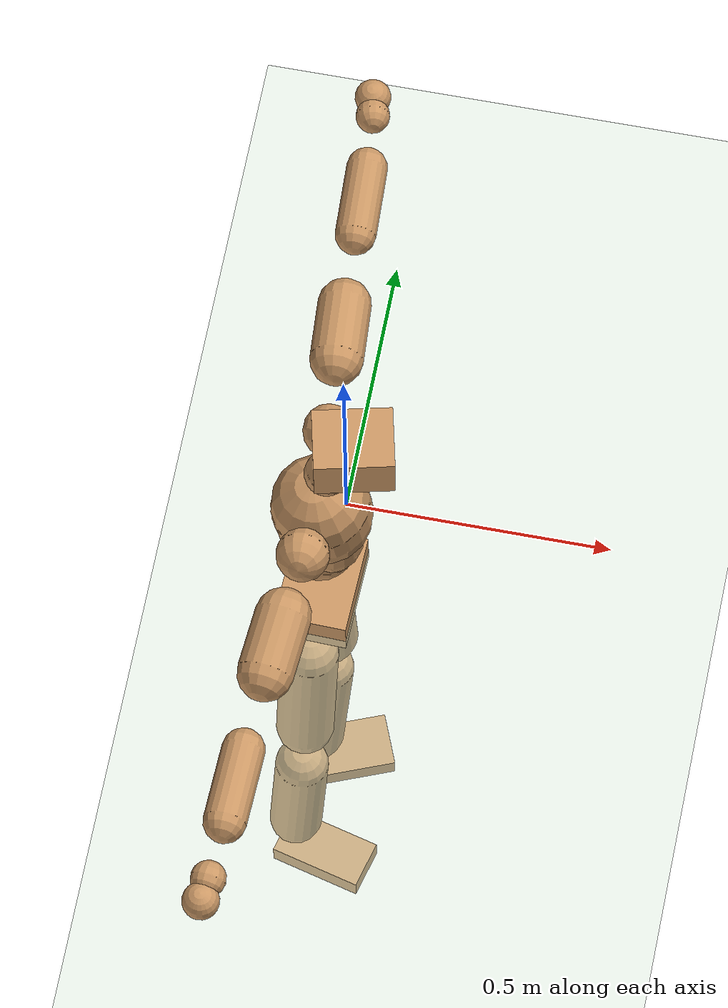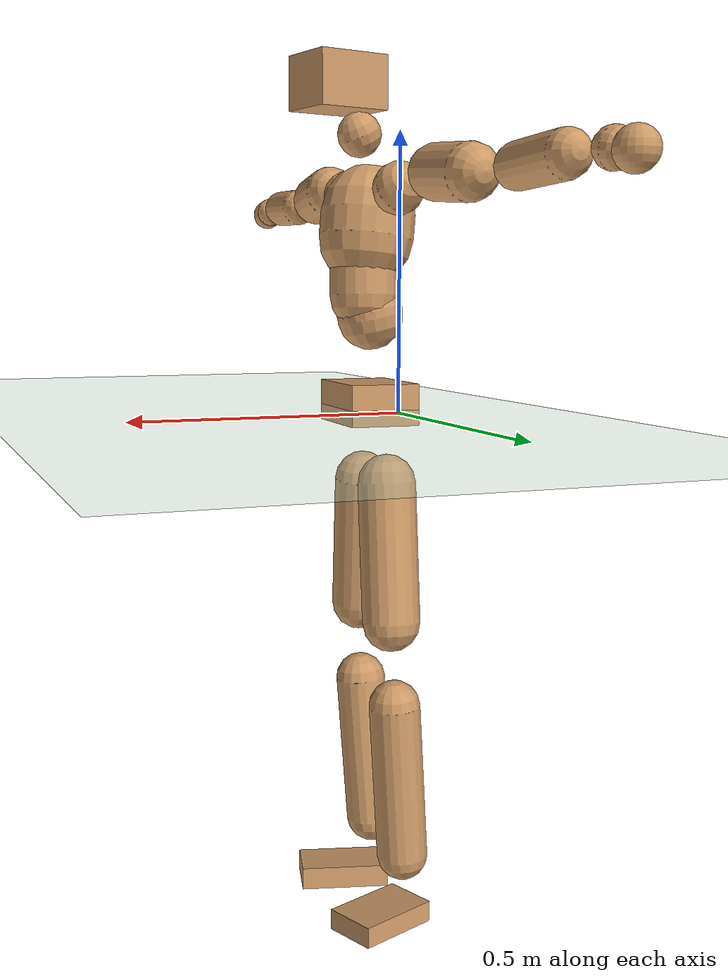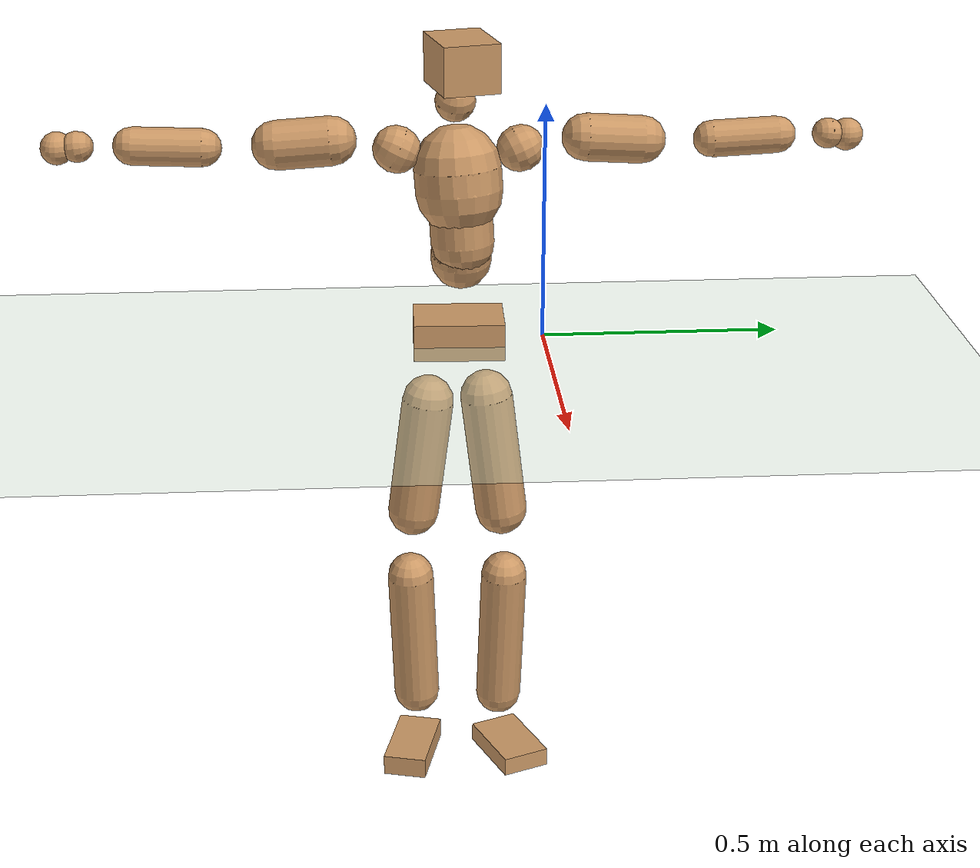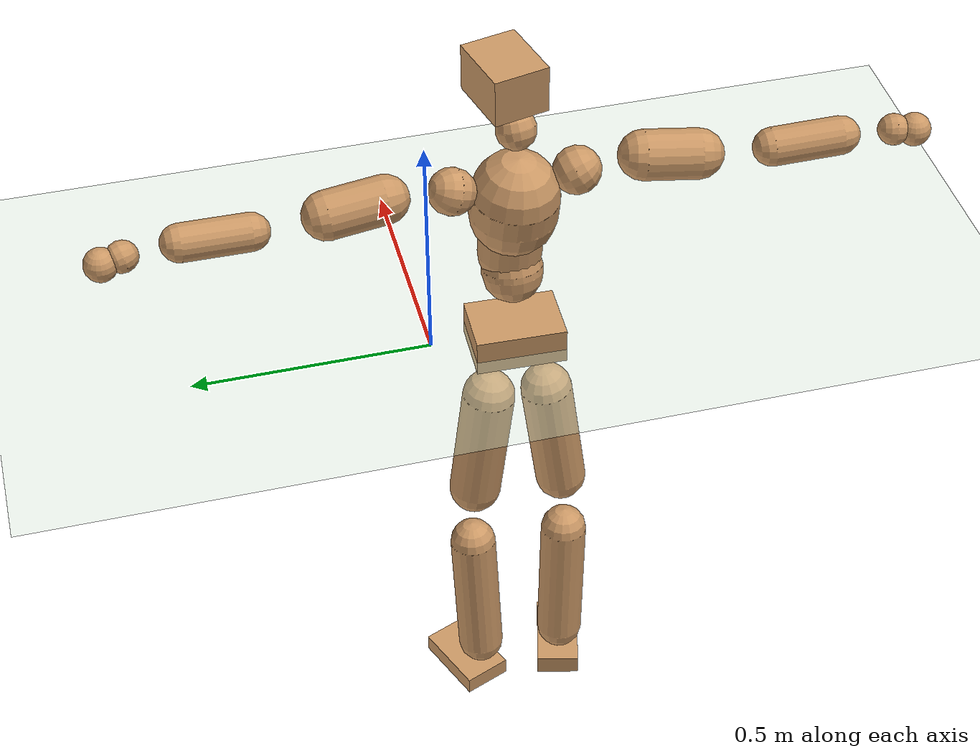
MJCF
<mujoco model="humanoid">
  <compiler coordinate="local" angle="radian"/>
  <default>
    <joint damping="0.0" armature="0.01" stiffness="0.0" limited="true"/>
    <geom conaffinity="1" condim="3" contype="7" margin="0.001" rgba="0.8 0.6 .4 1"/>
  </default>
  <asset>
    <texture type="skybox" builtin="gradient" rgb1=".4 .5 .6" rgb2="0 0 0" width="100" height="100"/>
    <texture builtin="flat" height="1278" mark="cross" markrgb="1 1 1" name="texgeom" random="0.01" rgb1="0.8 0.6 0.4" rgb2="0.8 0.6 0.4" type="cube" width="127"/>
    <texture builtin="checker" height="100" name="texplane" rgb1="0 0 0" rgb2="0.8 0.8 0.8" type="2d" width="100"/>
    <material name="MatPlane" reflectance="0.5" shininess="1" specular="1" texrepeat="60 60" texture="texplane"/>
    <material name="geom" texture="texgeom" texuniform="true"/>
  </asset>
  <worldbody>
    <light cutoff="100" diffuse="1 1 1" dir="-0 0 -1.3" directional="true" exponent="1" pos="0 0 1.3" specular=".1 .1 .1"/>
    <geom conaffinity="1" condim="3" name="floor" pos="0 0 0" rgba="0.8 0.9 0.8 1" size="100 100 .2" type="plane" material="MatPlane"/>
    <body name="Pelvis" pos="-0.0004 -0.1772 0.0151">
      <freejoint name="Pelvis"/>
      <geom type="box" contype="1" conaffinity="1" density="5359.375155" pos="-0.0117 0.0004 -0.0084" size="0.0673 0.0951 0.0395" quat="0.9999 0.0000 0.0000 -0.0155" name="Pelvis"/>
      <body name="L_Hip" pos="-0.0256 0.0511 -0.0754">
        <joint name="L_Hip_x" type="hinge" pos="0 0 0" axis="1 0 0" stiffness="1600" damping="160" armature="0.02" range="-180.0000 180.0000"/>
        <joint name="L_Hip_y" type="hinge" pos="0 0 0" axis="0 1 0" stiffness="1600" damping="160" armature="0.02" range="-180.0000 180.0000"/>
        <joint name="L_Hip_z" type="hinge" pos="0 0 0" axis="0 0 1" stiffness="1600" damping="160" armature="0.02" range="-180.0000 180.0000"/>
        <geom type="capsule" contype="1" conaffinity="1" density="2040.816327" size="0.0563" fromto="0.0008 0.0106 -0.0856 0.0032 0.0440 -0.3555" name="L_Hip"/>
        <body name="L_Knee" pos="0.0039 0.0545 -0.4411">
          <joint name="L_Knee_x" type="hinge" pos="0 0 0" axis="1 0 0" stiffness="1600" damping="160" armature="0.02" range="-180.0000 180.0000"/>
          <joint name="L_Knee_y" type="hinge" pos="0 0 0" axis="0 1 0" stiffness="1600" damping="160" armature="0.02" range="-180.0000 180.0000"/>
          <joint name="L_Knee_z" type="hinge" pos="0 0 0" axis="0 0 1" stiffness="1600" damping="160" armature="0.02" range="-180.0000 180.0000"/>
          <geom type="capsule" contype="1" conaffinity="1" density="1234.567901" size="0.0505" fromto="-0.0057 -0.0021 -0.0803 -0.0283 -0.0105 -0.3952" name="L_Knee"/>
          <body name="L_Ankle" pos="-0.034 -0.0126 -0.4754">
            <joint name="L_Ankle_x" type="hinge" pos="0 0 0" axis="1 0 0" stiffness="1600" damping="160" armature="0.02" range="-180.0000 180.0000"/>
            <joint name="L_Ankle_y" type="hinge" pos="0 0 0" axis="0 1 0" stiffness="1600" damping="160" armature="0.02" range="-180.0000 180.0000"/>
            <joint name="L_Ankle_z" type="hinge" pos="0 0 0" axis="0 0 1" stiffness="1600" damping="160" armature="0.02" range="-180.0000 180.0000"/>
            <geom type="box" contype="1" conaffinity="1" density="999.999978" pos="0.0603 0.0243 -0.0317" size="0.0845 0.053 0.0206" quat="0.9818 0.0000 0.0000 0.1901" name="L_Ankle"/>
            <body name="L_Toe" pos="0.1207 0.0486 -0.0634">
              <joint name="L_Toe_x" type="hinge" pos="0 0 0" axis="1 0 0" stiffness="1000" damping="100" armature="0.02" range="-180.0000 180.0000"/>
              <joint name="L_Toe_y" type="hinge" pos="0 0 0" axis="0 1 0" stiffness="1000" damping="100" armature="0.02" range="-180.0000 180.0000"/>
              <joint name="L_Toe_z" type="hinge" pos="0 0 0" axis="0 0 1" stiffness="1000" damping="100" armature="0.02" range="-180.0000 180.0000"/>
              <geom type="box" contype="1" conaffinity="1" density="7353048.996799" pos="0.0000 0.0000 0.0331" size="0.001 0.0025 0.0011" quat="0.9810 0.0000 0.0000 0.1942" name="L_Toe"/>
            </body>
          </body>
        </body>
      </body>
      <body name="R_Hip" pos="-0.0224 -0.054 -0.0838">
        <joint name="R_Hip_x" type="hinge" pos="0 0 0" axis="1 0 0" stiffness="1600" damping="160" armature="0.02" range="-180.0000 180.0000"/>
        <joint name="R_Hip_y" type="hinge" pos="0 0 0" axis="0 1 0" stiffness="1600" damping="160" armature="0.02" range="-180.0000 180.0000"/>
        <joint name="R_Hip_z" type="hinge" pos="0 0 0" axis="0 0 1" stiffness="1600" damping="160" armature="0.02" range="-180.0000 180.0000"/>
        <geom type="capsule" contype="1" conaffinity="1" density="2040.816327" size="0.0552" fromto="-0.0019 -0.0105 -0.0846 -0.0078 -0.0435 -0.3491" name="R_Hip"/>
        <body name="R_Knee" pos="-0.0097 -0.0541 -0.4337">
          <joint name="R_Knee_x" type="hinge" pos="0 0 0" axis="1 0 0" stiffness="1600" damping="160" armature="0.02" range="-180.0000 180.0000"/>
          <joint name="R_Knee_y" type="hinge" pos="0 0 0" axis="0 1 0" stiffness="1600" damping="160" armature="0.02" range="-180.0000 180.0000"/>
          <joint name="R_Knee_z" type="hinge" pos="0 0 0" axis="0 0 1" stiffness="1600" damping="160" armature="0.02" range="-180.0000 180.0000"/>
          <geom type="capsule" contype="1" conaffinity="1" density="1234.567901" size="0.051" fromto="-0.0052 0.0033 -0.0807 -0.0250 0.0158 -0.3881" name="R_Knee"/>
          <body name="R_Ankle" pos="-0.0302 0.0191 -0.4688">
            <joint name="R_Ankle_x" type="hinge" pos="0 0 0" axis="1 0 0" stiffness="1600" damping="160" armature="0.02" range="-180.0000 180.0000"/>
            <joint name="R_Ankle_y" type="hinge" pos="0 0 0" axis="0 1 0" stiffness="1600" damping="160" armature="0.02" range="-180.0000 180.0000"/>
            <joint name="R_Ankle_z" type="hinge" pos="0 0 0" axis="0 0 1" stiffness="1600" damping="160" armature="0.02" range="-180.0000 180.0000"/>
            <geom type="box" contype="1" conaffinity="1" density="1000.000006" pos="0.0642 -0.0166 -0.0349" size="0.0899 0.0474 0.0228" quat="0.9920 0.0000 0.0000 -0.1261" name="R_Ankle"/>
            <body name="R_Toe" pos="0.1284 -0.0332 -0.0699">
              <joint name="R_Toe_x" type="hinge" pos="0 0 0" axis="1 0 0" stiffness="1000" damping="100" armature="0.02" range="-180.0000 180.0000"/>
              <joint name="R_Toe_y" type="hinge" pos="0 0 0" axis="0 1 0" stiffness="1000" damping="100" armature="0.02" range="-180.0000 180.0000"/>
              <joint name="R_Toe_z" type="hinge" pos="0 0 0" axis="0 0 1" stiffness="1000" damping="100" armature="0.02" range="-180.0000 180.0000"/>
              <geom type="box" contype="1" conaffinity="1" density="8675658.697738" pos="0.0000 0.0000 0.0350" size="0.001 0.0023 0.0011" quat="0.9931 0.0000 0.0000 -0.1170" name="R_Toe"/>
            </body>
          </body>
        </body>
      </body>
      <body name="Torso" pos="-0.0224 0.0051 0.1086">
        <joint name="Torso_x" type="hinge" pos="0 0 0" axis="1 0 0" stiffness="2000" damping="200" armature="0.02" range="-180.0000 180.0000"/>
        <joint name="Torso_y" type="hinge" pos="0 0 0" axis="0 1 0" stiffness="2000" damping="200" armature="0.02" range="-180.0000 180.0000"/>
        <joint name="Torso_z" type="hinge" pos="0 0 0" axis="0 0 1" stiffness="2000" damping="200" armature="0.02" range="-180.0000 180.0000"/>
        <geom type="capsule" contype="1" conaffinity="1" density="2040.816327" size="0.0637" fromto="0.0140 0.0008 0.0621 0.0108 0.0006 0.0479" name="Torso"/>
        <body name="Spine" pos="0.0247 0.0014 0.11">
          <joint name="Spine_x" type="hinge" pos="0 0 0" axis="1 0 0" stiffness="2000" damping="200" armature="0.02" range="-180.0000 180.0000"/>
          <joint name="Spine_y" type="hinge" pos="0 0 0" axis="0 1 0" stiffness="2000" damping="200" armature="0.02" range="-180.0000 180.0000"/>
          <joint name="Spine_z" type="hinge" pos="0 0 0" axis="0 0 1" stiffness="2000" damping="200" armature="0.02" range="-180.0000 180.0000"/>
          <geom type="capsule" contype="1" conaffinity="1" density="2040.816327" size="0.066" fromto="-0.0019 -0.0038 0.0659 0.0006 0.0013 -0.0224" name="Spine"/>
          <body name="Chest" pos="-0.0012 -0.0025 0.0435">
            <joint name="Chest_x" type="hinge" pos="0 0 0" axis="1 0 0" stiffness="2000" damping="200" armature="0.02" range="-180.0000 180.0000"/>
            <joint name="Chest_y" type="hinge" pos="0 0 0" axis="0 1 0" stiffness="2000" damping="200" armature="0.02" range="-180.0000 180.0000"/>
            <joint name="Chest_z" type="hinge" pos="0 0 0" axis="0 0 1" stiffness="2000" damping="200" armature="0.02" range="-180.0000 180.0000"/>
            <geom type="capsule" contype="1" conaffinity="1" density="2040.816327" size="0.0909" fromto="-0.0101 -0.0061 0.0901 -0.0048 -0.0029 0.0429" name="Chest"/>
            <body name="Neck" pos="-0.0171 -0.0159 0.1903">
              <joint name="Neck_x" type="hinge" pos="0 0 0" axis="1 0 0" stiffness="1000" damping="100" armature="0.02" range="-180.0000 180.0000"/>
              <joint name="Neck_y" type="hinge" pos="0 0 0" axis="0 1 0" stiffness="1000" damping="100" armature="0.02" range="-180.0000 180.0000"/>
              <joint name="Neck_z" type="hinge" pos="0 0 0" axis="0 0 1" stiffness="1000" damping="100" armature="0.02" range="-180.0000 180.0000"/>
              <geom type="capsule" contype="1" conaffinity="1" density="1000" size="0.0417" fromto="0.0223 0.0044 0.0434 0.0232 0.0046 0.0452" name="Neck"/>
              <body name="Head" pos="0.0455 0.009 0.0886">
                <joint name="Head_x" type="hinge" pos="0 0 0" axis="1 0 0" stiffness="1000" damping="100" armature="0.02" range="-180.0000 180.0000"/>
                <joint name="Head_y" type="hinge" pos="0 0 0" axis="0 1 0" stiffness="1000" damping="100" armature="0.02" range="-180.0000 180.0000"/>
                <joint name="Head_z" type="hinge" pos="0 0 0" axis="0 0 1" stiffness="1000" damping="100" armature="0.02" range="-180.0000 180.0000"/>
                <geom type="box" contype="1" conaffinity="1" density="2250.000067" pos="0.0238 0.0055 0.0453" size="0.0724 0.0582 0.0497" quat="0.9935 0.0000 0.0000 0.1135" name="Head"/>
              </body>
            </body>
            <body name="L_Thorax" pos="-0.0124 0.0671 0.1039">
              <joint name="L_Thorax_x" type="hinge" pos="0 0 0" axis="1 0 0" stiffness="1000" damping="100" armature="0.02" range="-180.0000 180.0000"/>
              <joint name="L_Thorax_y" type="hinge" pos="0 0 0" axis="0 1 0" stiffness="1000" damping="100" armature="0.02" range="-180.0000 180.0000"/>
              <joint name="L_Thorax_z" type="hinge" pos="0 0 0" axis="0 0 1" stiffness="1000" damping="100" armature="0.02" range="-180.0000 180.0000"/>
              <geom type="capsule" contype="1" conaffinity="1" density="1000" size="0.0483" fromto="-0.0065 0.0556 0.0230 -0.0068 0.0575 0.0238" name="L_Thorax"/>
              <body name="L_Shoulder" pos="-0.0133 0.1131 0.0468">
                <joint name="L_Shoulder_x" type="hinge" pos="0 0 0" axis="1 0 0" stiffness="1000" damping="100" armature="0.02" range="-720.0000 720.0000"/>
                <joint name="L_Shoulder_y" type="hinge" pos="0 0 0" axis="0 1 0" stiffness="1000" damping="100" armature="0.02" range="-720.0000 720.0000"/>
                <joint name="L_Shoulder_z" type="hinge" pos="0 0 0" axis="0 0 1" stiffness="1000" damping="100" armature="0.02" range="-720.0000 720.0000"/>
                <geom type="capsule" contype="1" conaffinity="1" density="1000" size="0.0496" fromto="-0.0056 0.0792 -0.0062 -0.0139 0.1959 -0.0155" name="L_Shoulder"/>
                <body name="L_Elbow" pos="-0.0195 0.2751 -0.0217">
                  <joint name="L_Elbow_x" type="hinge" pos="0 0 0" axis="1 0 0" stiffness="1000" damping="100" armature="0.02" range="-720.0000 720.0000"/>
                  <joint name="L_Elbow_y" type="hinge" pos="0 0 0" axis="0 1 0" stiffness="1000" damping="100" armature="0.02" range="-720.0000 720.0000"/>
                  <joint name="L_Elbow_z" type="hinge" pos="0 0 0" axis="0 0 1" stiffness="1000" damping="100" armature="0.02" range="-720.0000 720.0000"/>
                  <geom type="capsule" contype="1" conaffinity="1" density="1000" size="0.0381" fromto="-0.0026 0.0680 0.0026 -0.0079 0.2057 0.0079" name="L_Elbow"/>
                  <body name="L_Wrist" pos="-0.0105 0.2737 0.0105">
                    <joint name="L_Wrist_x" type="hinge" pos="0 0 0" axis="1 0 0" stiffness="600" damping="60" armature="0.02" range="-180.0000 180.0000"/>
                    <joint name="L_Wrist_y" type="hinge" pos="0 0 0" axis="0 1 0" stiffness="600" damping="60" armature="0.02" range="-180.0000 180.0000"/>
                    <joint name="L_Wrist_z" type="hinge" pos="0 0 0" axis="0 0 1" stiffness="600" damping="60" armature="0.02" range="-180.0000 180.0000"/>
                    <geom type="capsule" contype="1" conaffinity="1" density="1000" size="0.0317" fromto="-0.0075 0.0405 -0.0048 -0.0079 0.0424 -0.0051" name="L_Wrist"/>
                    <body name="L_Hand" pos="-0.0155 0.0829 -0.0099">
                      <joint name="L_Hand_x" type="hinge" pos="0 0 0" axis="1 0 0" stiffness="600" damping="60" armature="0.02" range="-180.0000 180.0000"/>
                      <joint name="L_Hand_y" type="hinge" pos="0 0 0" axis="0 1 0" stiffness="600" damping="60" armature="0.02" range="-180.0000 180.0000"/>
                      <joint name="L_Hand_z" type="hinge" pos="0 0 0" axis="0 0 1" stiffness="600" damping="60" armature="0.02" range="-180.0000 180.0000"/>
                      <geom type="sphere" contype="1" conaffinity="1" density="1000" size="0.0337" pos="0.0000 0.0000 0.0000" name="L_Hand"/>
                    </body>
                  </body>
                </body>
              </body>
            </body>
            <body name="R_Thorax" pos="-0.0153 -0.0781 0.1048">
              <joint name="R_Thorax_x" type="hinge" pos="0 0 0" axis="1 0 0" stiffness="1000" damping="100" armature="0.02" range="-180.0000 180.0000"/>
              <joint name="R_Thorax_y" type="hinge" pos="0 0 0" axis="0 1 0" stiffness="1000" damping="100" armature="0.02" range="-180.0000 180.0000"/>
              <joint name="R_Thorax_z" type="hinge" pos="0 0 0" axis="0 0 1" stiffness="1000" damping="100" armature="0.02" range="-180.0000 180.0000"/>
              <geom type="capsule" contype="1" conaffinity="1" density="1000" size="0.0489" fromto="-0.0017 -0.0506 0.0247 -0.0017 -0.0524 0.0256" name="R_Thorax"/>
              <body name="R_Shoulder" pos="-0.0034 -0.1029 0.0503">
                <joint name="R_Shoulder_x" type="hinge" pos="0 0 0" axis="1 0 0" stiffness="1000" damping="100" armature="0.02" range="-720.0000 720.0000"/>
                <joint name="R_Shoulder_y" type="hinge" pos="0 0 0" axis="0 1 0" stiffness="1000" damping="100" armature="0.02" range="-720.0000 720.0000"/>
                <joint name="R_Shoulder_z" type="hinge" pos="0 0 0" axis="0 0 1" stiffness="1000" damping="100" armature="0.02" range="-720.0000 720.0000"/>
                <geom type="capsule" contype="1" conaffinity="1" density="1000" size="0.0514" fromto="-0.0074 -0.0807 -0.0074 -0.0176 -0.1929 -0.0176" name="R_Shoulder"/>
                <body name="R_Elbow" pos="-0.0249 -0.2737 -0.025">
                  <joint name="R_Elbow_x" type="hinge" pos="0 0 0" axis="1 0 0" stiffness="1000" damping="100" armature="0.02" range="-720.0000 720.0000"/>
                  <joint name="R_Elbow_y" type="hinge" pos="0 0 0" axis="0 1 0" stiffness="1000" damping="100" armature="0.02" range="-720.0000 720.0000"/>
                  <joint name="R_Elbow_z" type="hinge" pos="0 0 0" axis="0 0 1" stiffness="1000" damping="100" armature="0.02" range="-720.0000 720.0000"/>
                  <geom type="capsule" contype="1" conaffinity="1" density="1000" size="0.0394" fromto="-0.0021 -0.0693 0.0024 -0.0063 -0.2125 0.0073" name="R_Elbow"/>
                  <body name="R_Wrist" pos="-0.0084 -0.2817 0.0097">
                    <joint name="R_Wrist_x" type="hinge" pos="0 0 0" axis="1 0 0" stiffness="600" damping="60" armature="0.02" range="-180.0000 180.0000"/>
                    <joint name="R_Wrist_y" type="hinge" pos="0 0 0" axis="0 1 0" stiffness="600" damping="60" armature="0.02" range="-180.0000 180.0000"/>
                    <joint name="R_Wrist_z" type="hinge" pos="0 0 0" axis="0 0 1" stiffness="600" damping="60" armature="0.02" range="-180.0000 180.0000"/>
                    <geom type="capsule" contype="1" conaffinity="1" density="1000" size="0.0323" fromto="-0.0049 -0.0411 -0.0039 -0.0051 -0.0430 -0.0041" name="R_Wrist"/>
                    <body name="R_Hand" pos="-0.01 -0.0841 -0.0079">
                      <joint name="R_Hand_x" type="hinge" pos="0 0 0" axis="1 0 0" stiffness="600" damping="60" armature="0.02" range="-180.0000 180.0000"/>
                      <joint name="R_Hand_y" type="hinge" pos="0 0 0" axis="0 1 0" stiffness="600" damping="60" armature="0.02" range="-180.0000 180.0000"/>
                      <joint name="R_Hand_z" type="hinge" pos="0 0 0" axis="0 0 1" stiffness="600" damping="60" armature="0.02" range="-180.0000 180.0000"/>
                      <geom type="sphere" contype="1" conaffinity="1" density="1000" size="0.0340" pos="0.0000 0.0000 0.0000" name="R_Hand"/>
                    </body>
                  </body>
                </body>
              </body>
            </body>
          </body>
        </body>
      </body>
    </body>
  </worldbody>
  <actuator>
    <motor name="L_Hip_x" joint="L_Hip_x" gear="500"/>
    <motor name="L_Hip_y" joint="L_Hip_y" gear="500"/>
    <motor name="L_Hip_z" joint="L_Hip_z" gear="500"/>
    <motor name="L_Knee_x" joint="L_Knee_x" gear="500"/>
    <motor name="L_Knee_y" joint="L_Knee_y" gear="500"/>
    <motor name="L_Knee_z" joint="L_Knee_z" gear="500"/>
    <motor name="L_Ankle_x" joint="L_Ankle_x" gear="500"/>
    <motor name="L_Ankle_y" joint="L_Ankle_y" gear="500"/>
    <motor name="L_Ankle_z" joint="L_Ankle_z" gear="500"/>
    <motor name="L_Toe_x" joint="L_Toe_x" gear="500"/>
    <motor name="L_Toe_y" joint="L_Toe_y" gear="500"/>
    <motor name="L_Toe_z" joint="L_Toe_z" gear="500"/>
    <motor name="R_Hip_x" joint="R_Hip_x" gear="500"/>
    <motor name="R_Hip_y" joint="R_Hip_y" gear="500"/>
    <motor name="R_Hip_z" joint="R_Hip_z" gear="500"/>
    <motor name="R_Knee_x" joint="R_Knee_x" gear="500"/>
    <motor name="R_Knee_y" joint="R_Knee_y" gear="500"/>
    <motor name="R_Knee_z" joint="R_Knee_z" gear="500"/>
    <motor name="R_Ankle_x" joint="R_Ankle_x" gear="500"/>
    <motor name="R_Ankle_y" joint="R_Ankle_y" gear="500"/>
    <motor name="R_Ankle_z" joint="R_Ankle_z" gear="500"/>
    <motor name="R_Toe_x" joint="R_Toe_x" gear="500"/>
    <motor name="R_Toe_y" joint="R_Toe_y" gear="500"/>
    <motor name="R_Toe_z" joint="R_Toe_z" gear="500"/>
    <motor name="Torso_x" joint="Torso_x" gear="500"/>
    <motor name="Torso_y" joint="Torso_y" gear="500"/>
    <motor name="Torso_z" joint="Torso_z" gear="500"/>
    <motor name="Spine_x" joint="Spine_x" gear="500"/>
    <motor name="Spine_y" joint="Spine_y" gear="500"/>
    <motor name="Spine_z" joint="Spine_z" gear="500"/>
    <motor name="Chest_x" joint="Chest_x" gear="500"/>
    <motor name="Chest_y" joint="Chest_y" gear="500"/>
    <motor name="Chest_z" joint="Chest_z" gear="500"/>
    <motor name="Neck_x" joint="Neck_x" gear="500"/>
    <motor name="Neck_y" joint="Neck_y" gear="500"/>
    <motor name="Neck_z" joint="Neck_z" gear="500"/>
    <motor name="Head_x" joint="Head_x" gear="500"/>
    <motor name="Head_y" joint="Head_y" gear="500"/>
    <motor name="Head_z" joint="Head_z" gear="500"/>
    <motor name="L_Thorax_x" joint="L_Thorax_x" gear="500"/>
    <motor name="L_Thorax_y" joint="L_Thorax_y" gear="500"/>
    <motor name="L_Thorax_z" joint="L_Thorax_z" gear="500"/>
    <motor name="L_Shoulder_x" joint="L_Shoulder_x" gear="500"/>
    <motor name="L_Shoulder_y" joint="L_Shoulder_y" gear="500"/>
    <motor name="L_Shoulder_z" joint="L_Shoulder_z" gear="500"/>
    <motor name="L_Elbow_x" joint="L_Elbow_x" gear="500"/>
    <motor name="L_Elbow_y" joint="L_Elbow_y" gear="500"/>
    <motor name="L_Elbow_z" joint="L_Elbow_z" gear="500"/>
    <motor name="L_Wrist_x" joint="L_Wrist_x" gear="500"/>
    <motor name="L_Wrist_y" joint="L_Wrist_y" gear="500"/>
    <motor name="L_Wrist_z" joint="L_Wrist_z" gear="500"/>
    <motor name="L_Hand_x" joint="L_Hand_x" gear="500"/>
    <motor name="L_Hand_y" joint="L_Hand_y" gear="500"/>
    <motor name="L_Hand_z" joint="L_Hand_z" gear="500"/>
    <motor name="R_Thorax_x" joint="R_Thorax_x" gear="500"/>
    <motor name="R_Thorax_y" joint="R_Thorax_y" gear="500"/>
    <motor name="R_Thorax_z" joint="R_Thorax_z" gear="500"/>
    <motor name="R_Shoulder_x" joint="R_Shoulder_x" gear="500"/>
    <motor name="R_Shoulder_y" joint="R_Shoulder_y" gear="500"/>
    <motor name="R_Shoulder_z" joint="R_Shoulder_z" gear="500"/>
    <motor name="R_Elbow_x" joint="R_Elbow_x" gear="500"/>
    <motor name="R_Elbow_y" joint="R_Elbow_y" gear="500"/>
    <motor name="R_Elbow_z" joint="R_Elbow_z" gear="500"/>
    <motor name="R_Wrist_x" joint="R_Wrist_x" gear="500"/>
    <motor name="R_Wrist_y" joint="R_Wrist_y" gear="500"/>
    <motor name="R_Wrist_z" joint="R_Wrist_z" gear="500"/>
    <motor name="R_Hand_x" joint="R_Hand_x" gear="500"/>
    <motor name="R_Hand_y" joint="R_Hand_y" gear="500"/>
    <motor name="R_Hand_z" joint="R_Hand_z" gear="500"/>
  </actuator>
  <contact>
    <exclude body1="Torso" body2="Chest"/>
    <exclude body1="Head" body2="Chest"/>
    <exclude body1="R_Knee" body2="R_Toe"/>
    <exclude body1="R_Knee" body2="L_Ankle"/>
    <exclude body1="R_Knee" body2="L_Toe"/>
    <exclude body1="L_Knee" body2="L_Toe"/>
    <exclude body1="L_Knee" body2="R_Ankle"/>
    <exclude body1="L_Knee" body2="R_Toe"/>
    <exclude body1="L_Shoulder" body2="Chest"/>
    <exclude body1="R_Shoulder" body2="Chest"/>
  </contact>
  <sensor/>
  <size njmax="700" nconmax="700"/>
</mujoco>
